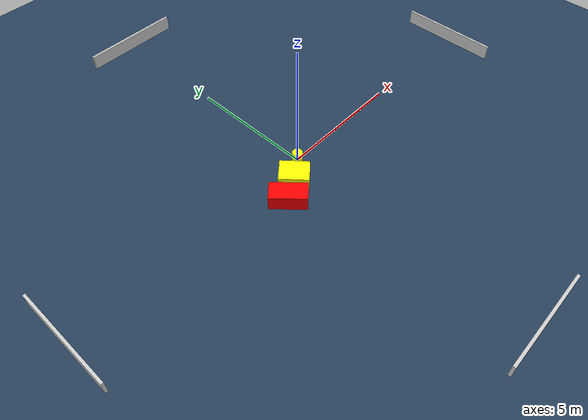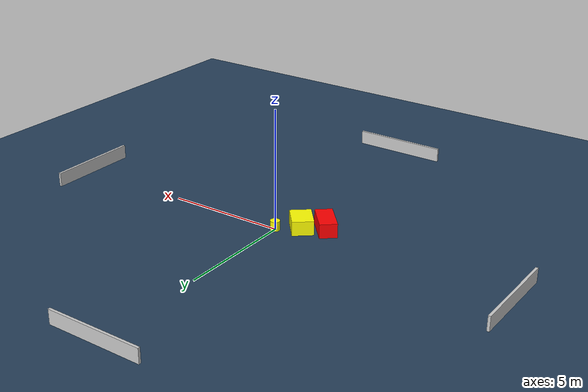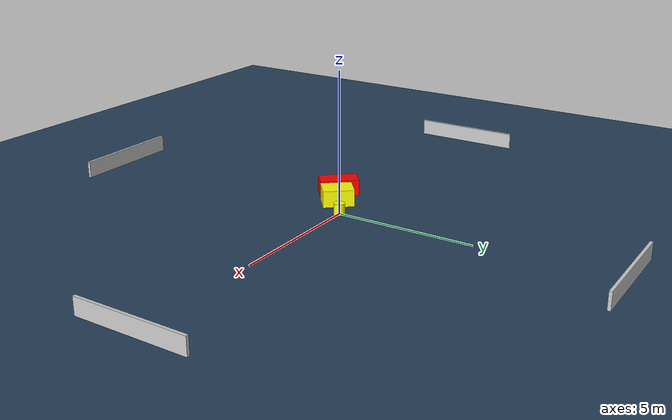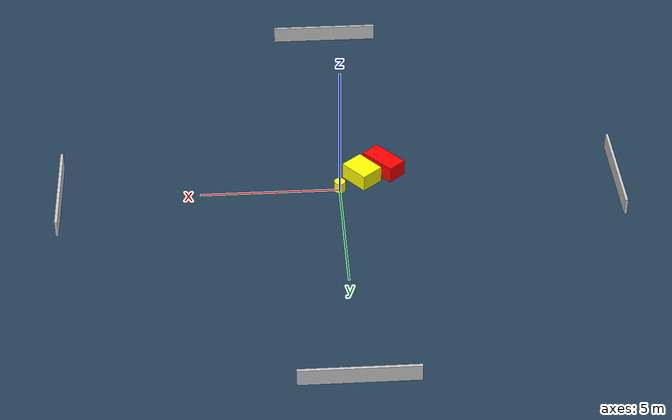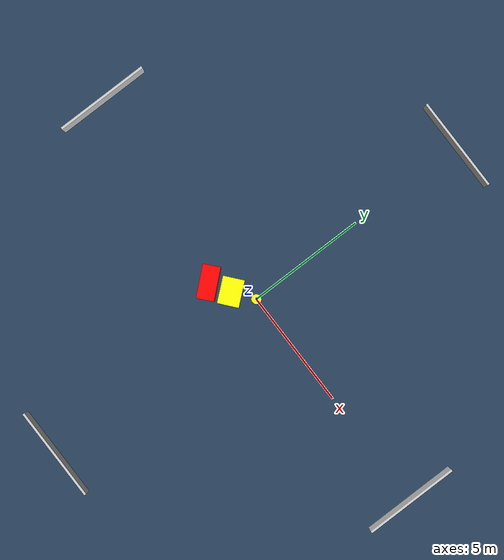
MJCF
<?xml version="1.0" ?>
<mujoco model="generated_environment">
  <option timestep="0.01" integrator="RK4" cone="elliptic"/>
  <default>
    <geom density="1"/>
  </default>
  <asset>
    <texture builtin="gradient" height="3072" name="skybox" rgb1="0.3 0.5 0.7" rgb2="0 0 0" type="skybox" width="512"/>
    <texture builtin="checker" height="300" name="groundplane" rgb1="0.2 0.3 0.4" rgb2="0.1 0.2 0.3" type="2d" width="300"/>
    <material name="groundplane" reflectance="0.2" texrepeat="5 5" texture="groundplane"/>
  </asset>
  <worldbody>
    <light dir="0 0 -1" directional="true" pos="0 0 1.5"/>
    <geom condim="3" friction="0.5 0.005 0.001" material="groundplane" name="floor" pos="0 0 0" size="0 0 0.05" type="plane"/>
    <body name="walls">
      <geom name="wall_1" condim="4" pos="-10.0 0.0 0.3" rgba="0.800000011920929 0.800000011920929 0.800000011920929 1.0" size="0.05 2.0 0.3" type="box"/>
      <geom name="wall_2" condim="4" pos="10.0 0.0 0.3" rgba="0.800000011920929 0.800000011920929 0.800000011920929 1.0" size="0.05 2.0 0.3" type="box"/>
      <geom name="wall_3" condim="4" pos="0.0 -10.0 0.3" rgba="0.800000011920929 0.800000011920929 0.800000011920929 1.0" size="2.0 0.05 0.3" type="box"/>
      <geom name="wall_4" condim="4" pos="0.0 10.0 0.3" rgba="0.800000011920929 0.800000011920929 0.800000011920929 1.0" size="2.0 0.05 0.3" type="box"/>
    </body>
    <body name="robot">
      <joint name="joint_x" type="slide" pos="0 0 0" axis="1 0 0"/>
      <joint name="joint_y" type="slide" pos="0 0 0" axis="0 1 0"/>
      <geom name="robot" type="cylinder" pos="0.0 0.0 0.2" size="0.2 0.2 0.0" mass="5.0" friction="1.0 0.005 0.0001" condim="4" rgba="1.0 1.0 0.0 1.0"/>
    </body>
    <body name="obstacle_1_movable">
      <geom name="obstacle_1_movable" condim="4" pos="-0.8397351275762842 -0.6182293414248113 0.3" euler="0 0 39.84220894221667" friction="0.0 0.005 0.001" rgba="1.0 1.0 0.0 1.0" size="0.4387785196121292 0.557475267941367 0.3" type="box" mass="0.1"/>
      <joint type="free"/>
    </body>
    <body name="obstacle_2_static">
      <geom name="obstacle_2_static" condim="4" pos="-1.6652788757955492 -1.1024272729978235 0.3" euler="0 0 221.35609295351205" friction="0.0 0.005 0.001" rgba="1.0 0.0 0.0 1.0" size="0.361210800677889 0.696645699835492 0.3" type="box"/>
    </body>
  </worldbody>
  <actuator>
    <motor name="actuator_x" joint="joint_x" gear="1" ctrlrange="-1 1"/>
    <motor name="actuator_y" joint="joint_y" gear="1" ctrlrange="-1 1"/>
  </actuator>
</mujoco>
